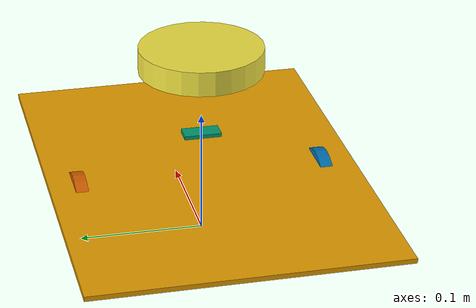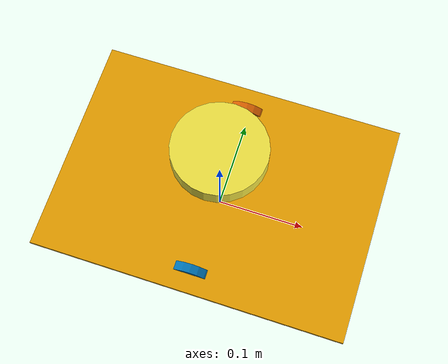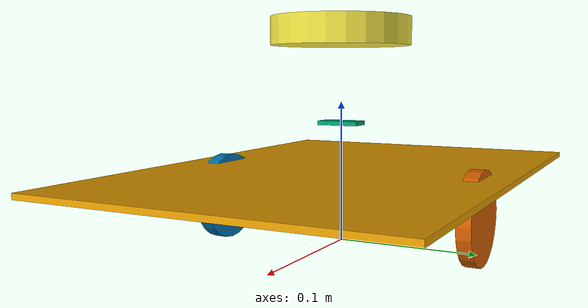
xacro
<?xml version="1.0"?>
<robot xmlns:xacro="http://www.ros.org/wiki/xacro" name="differential_drive_robot">

  <!-- Load Configurable Parameters -->
  <xacro:property name="wheel_separation" value="0.2"/> <!-- meters -->
  <xacro:property name="wheel_diameter" value="0.065"/> <!-- meters -->
  <xacro:property name="robot_length" value="0.35"/> <!-- meters -->
  <xacro:property name="robot_width" value="0.25"/> <!-- meters -->
  <xacro:property name="base_link_z_offset" value="0.05"/> <!-- meters -->
  <xacro:property name="base_link_height" value="0.004"/> <!-- meters -->
  <xacro:property name="imu_link_length" value="0.015"/> <!-- meters -->
  <xacro:property name="imu_link_width" value="0.03"/> <!-- meters -->
  <xacro:property name="imu_link_height" value="0.003"/> <!-- meters -->
  <xacro:property name="imu_link_position_height" value="0.01"/> <!-- meters -->
  <xacro:property name="lidar_link_height" value="0.1"/> <!-- meters -->

  <!-- Base Link -->
  <link name="base_link">
    <visual>
      <geometry>
        <box size="${robot_length} ${robot_width} ${base_link_height}"/>
      </geometry>
    </visual>
  </link>

  <!-- Base Footprint -->
  <link name="base_footprint">
  <visual>
      <geometry>
      <box size="0.001 0.001 0.001"/> <!-- Minimal visual representation -->
      </geometry>
  </visual>
  </link>

  <joint name="base_footprint_to_base_link" type="fixed">
    <parent link="base_footprint"/>
    <child link="base_link"/>
    <origin xyz="0 0 ${base_link_z_offset}" rpy="0 0 0"/>
  </joint>

  <!-- Wheels -->
  <xacro:macro name="wheel" params="name x y z">
    <link name="${name}">
      <visual>
        <geometry>
          <cylinder length="0.01" radius="${wheel_diameter / 2}"/>
        </geometry>
      </visual>
      <collision>
        <geometry>
          <cylinder length="0.01" radius="${wheel_diameter / 2}"/>
        </geometry>
      </collision>
    </link>
    <joint name="${name}_joint" type="continuous">
      <parent link="base_link"/>
      <child link="${name}"/>
      <origin xyz="${x} ${y} ${z}" rpy="1.5707 0 0"/> <!-- Adjust rpy for wheel rotation axis -->
      <axis xyz="0 1 0"/>
    </joint>
</xacro:macro>

  <!-- IMU Link -->
  <link name="imu_link">
    <visual>
      <geometry>
        <box size="${imu_link_length} ${imu_link_width} ${imu_link_height}"/>
      </geometry>
      <origin xyz="0 0 0" rpy="0 0 0"/>
    </visual>
  </link>
  <joint name="imu_joint" type="fixed">
    <parent link="base_link"/>
    <child link="imu_link"/>
    <origin xyz="0 0 ${imu_link_position_height + base_link_z_offset / 2}" rpy="0 0 3.14"/>
  </joint>

  <!-- Lidar Link -->
  <link name="laser_link">
    <visual>
      <geometry>
        <cylinder length="0.02" radius="0.05"/>
      </geometry>
    </visual>
  </link>
  <joint name="lidar_joint" type="fixed">
    <parent link="base_link"/>
    <child link="laser_link"/>
    <origin xyz="0 0 ${lidar_link_height}" rpy="0 0 0"/>
  </joint>

  <!-- Instantiate Wheels -->
<xacro:wheel name="left_wheel" x="0" y="${-wheel_separation / 2}" z="${-base_link_z_offset / 2}"/>
<xacro:wheel name="right_wheel" x="0" y="${wheel_separation / 2}" z="${-base_link_z_offset / 2}"/>

</robot>
